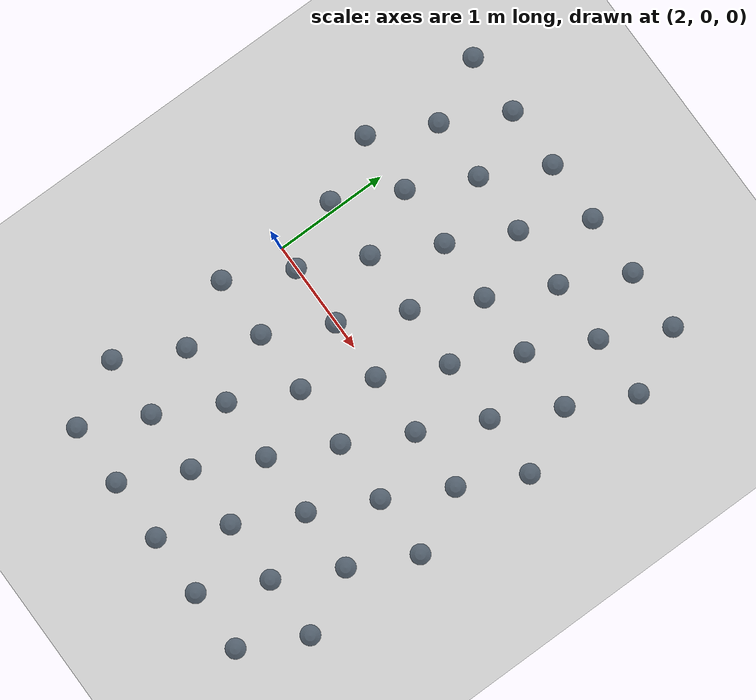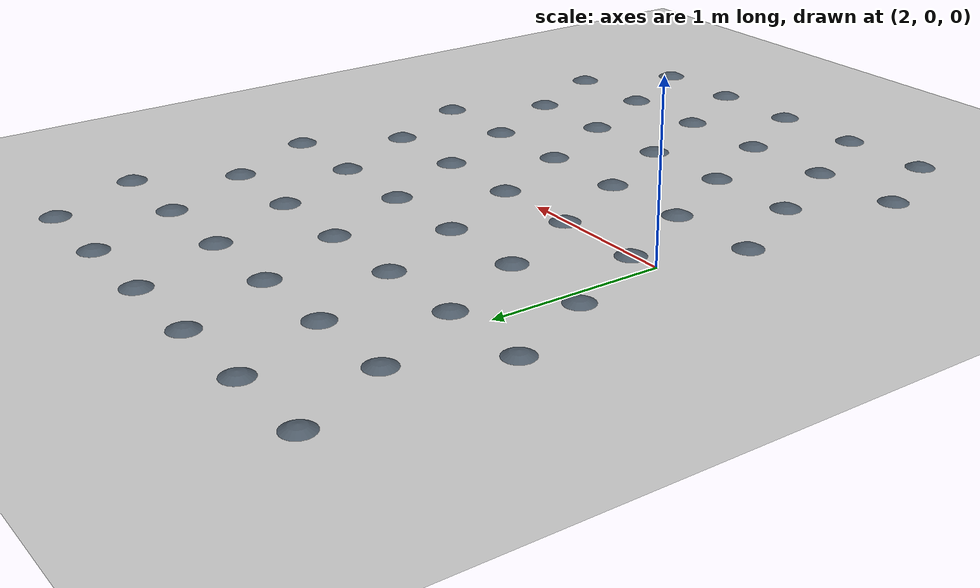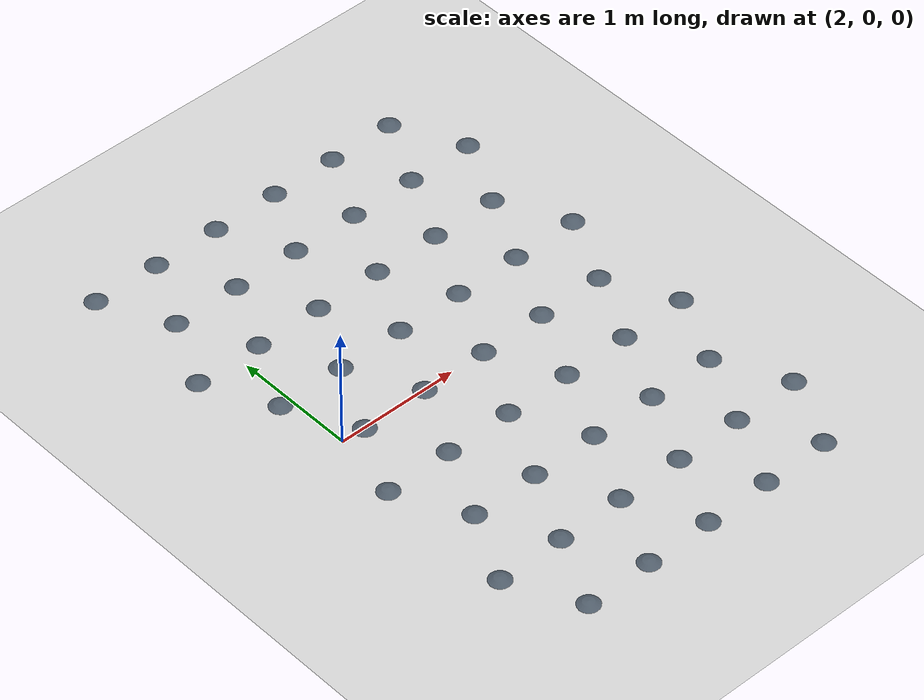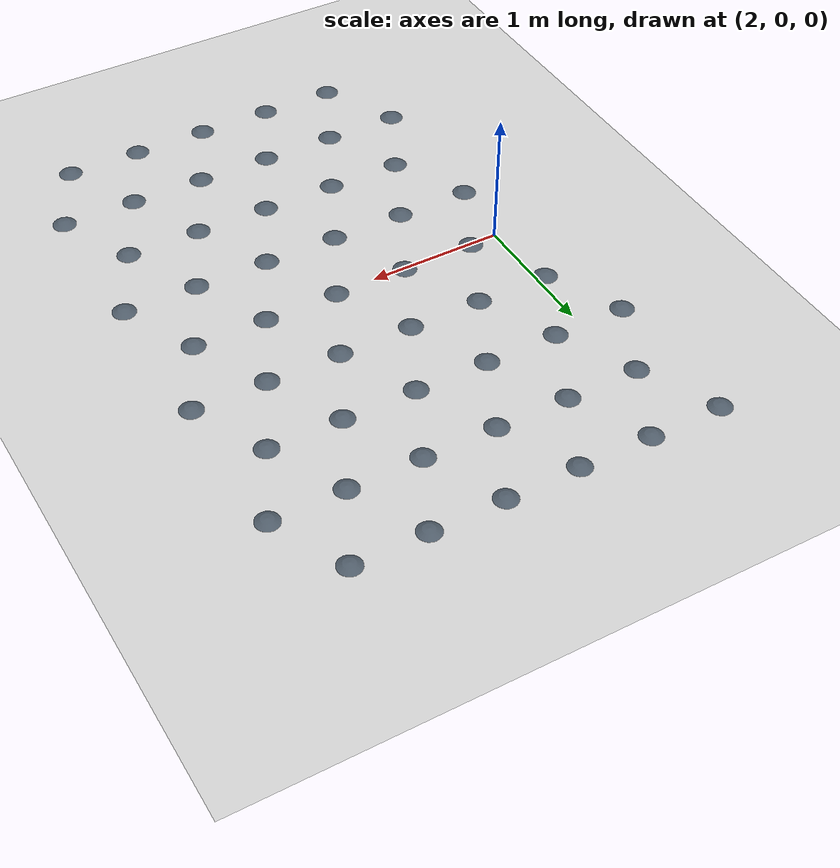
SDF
<sdf version="1.9">
 <world name="empty_ground">
  <model name="ground_plane">
   <static>true</static>
   <link name="link">
    <collision name="collision">
     <geometry><plane><normal>0 0 1</normal><size>100 100</size></plane></geometry>
     <surface>
      <friction>
       <ode><mu>1.5</mu><mu2>1.5</mu2></ode>
       <torsional><coefficient>0.0</coefficient></torsional>
      </friction>
     </surface>
    </collision>
    <visual name="visual">
     <geometry><plane><normal>0 0 1</normal><size>100 100</size></plane></geometry>
     <material><ambient>0.8 0.8 0.8 1</ambient><diffuse>0.8 0.8 0.8 1</diffuse></material>
    </visual>
   </link>
  </model>
  <model name="dome_49">
   <static>true</static>
   <pose>1.920 -1.650 -0.1213 0 0 0</pose>
   <link name="link">
    <collision name="collision">
     <geometry><sphere><radius>0.1453</radius></sphere></geometry>
     <surface>
      <friction>
       <ode><mu>1.5</mu><mu2>1.5</mu2></ode>
       <torsional><coefficient>0.0</coefficient></torsional>
      </friction>
     </surface>
    </collision>
    <visual name="visual">
     <geometry><sphere><radius>0.1453</radius></sphere></geometry>
     <material><ambient>0.25 0.3 0.35 1</ambient><diffuse>0.30 0.35 0.4 1</diffuse></material>
    </visual>
   </link>
  </model>
  <model name="dome_51">
   <static>true</static>
   <pose>1.920 -0.550 -0.1213 0 0 0</pose>
   <link name="link">
    <collision name="collision">
     <geometry><sphere><radius>0.1453</radius></sphere></geometry>
     <surface>
      <friction>
       <ode><mu>1.5</mu><mu2>1.5</mu2></ode>
       <torsional><coefficient>0.0</coefficient></torsional>
      </friction>
     </surface>
    </collision>
    <visual name="visual">
     <geometry><sphere><radius>0.1453</radius></sphere></geometry>
     <material><ambient>0.25 0.3 0.35 1</ambient><diffuse>0.30 0.35 0.4 1</diffuse></material>
    </visual>
   </link>
  </model>
  <model name="dome_53">
   <static>true</static>
   <pose>1.920 0.550 -0.1213 0 0 0</pose>
   <link name="link">
    <collision name="collision">
     <geometry><sphere><radius>0.1453</radius></sphere></geometry>
     <surface>
      <friction>
       <ode><mu>1.5</mu><mu2>1.5</mu2></ode>
       <torsional><coefficient>0.0</coefficient></torsional>
      </friction>
     </surface>
    </collision>
    <visual name="visual">
     <geometry><sphere><radius>0.1453</radius></sphere></geometry>
     <material><ambient>0.25 0.3 0.35 1</ambient><diffuse>0.30 0.35 0.4 1</diffuse></material>
    </visual>
   </link>
  </model>
  <model name="dome_54">
   <static>true</static>
   <pose>1.650 1.100 -0.1213 0 0 0</pose>
   <link name="link">
    <collision name="collision">
     <geometry><sphere><radius>0.1453</radius></sphere></geometry>
     <surface>
      <friction>
       <ode><mu>1.5</mu><mu2>1.5</mu2></ode>
       <torsional><coefficient>0.0</coefficient></torsional>
      </friction>
     </surface>
    </collision>
    <visual name="visual">
     <geometry><sphere><radius>0.1453</radius></sphere></geometry>
     <material><ambient>0.25 0.3 0.35 1</ambient><diffuse>0.30 0.35 0.4 1</diffuse></material>
    </visual>
   </link>
  </model>
  <model name="dome_55">
   <static>true</static>
   <pose>1.920 1.650 -0.1213 0 0 0</pose>
   <link name="link">
    <collision name="collision">
     <geometry><sphere><radius>0.1453</radius></sphere></geometry>
     <surface>
      <friction>
       <ode><mu>1.5</mu><mu2>1.5</mu2></ode>
       <torsional><coefficient>0.0</coefficient></torsional>
      </friction>
     </surface>
    </collision>
    <visual name="visual">
     <geometry><sphere><radius>0.1453</radius></sphere></geometry>
     <material><ambient>0.25 0.3 0.35 1</ambient><diffuse>0.30 0.35 0.4 1</diffuse></material>
    </visual>
   </link>
  </model>
  <model name="dome_56">
   <static>true</static>
   <pose>1.650 2.200 -0.1213 0 0 0</pose>
   <link name="link">
    <collision name="collision">
     <geometry><sphere><radius>0.1453</radius></sphere></geometry>
     <surface>
      <friction>
       <ode><mu>1.5</mu><mu2>1.5</mu2></ode>
       <torsional><coefficient>0.0</coefficient></torsional>
      </friction>
     </surface>
    </collision>
    <visual name="visual">
     <geometry><sphere><radius>0.1453</radius></sphere></geometry>
     <material><ambient>0.25 0.3 0.35 1</ambient><diffuse>0.30 0.35 0.4 1</diffuse></material>
    </visual>
   </link>
  </model>
  <model name="dome_57">
   <static>true</static>
   <pose>2.200 -2.200 -0.1213 0 0 0</pose>
   <link name="link">
    <collision name="collision">
     <geometry><sphere><radius>0.1453</radius></sphere></geometry>
     <surface>
      <friction>
       <ode><mu>1.5</mu><mu2>1.5</mu2></ode>
       <torsional><coefficient>0.0</coefficient></torsional>
      </friction>
     </surface>
    </collision>
    <visual name="visual">
     <geometry><sphere><radius>0.1453</radius></sphere></geometry>
     <material><ambient>0.25 0.3 0.35 1</ambient><diffuse>0.30 0.35 0.4 1</diffuse></material>
    </visual>
   </link>
  </model>
  <model name="dome_58">
   <static>true</static>
   <pose>2.470 -1.650 -0.1213 0 0 0</pose>
   <link name="link">
    <collision name="collision">
     <geometry><sphere><radius>0.1453</radius></sphere></geometry>
     <surface>
      <friction>
       <ode><mu>1.5</mu><mu2>1.5</mu2></ode>
       <torsional><coefficient>0.0</coefficient></torsional>
      </friction>
     </surface>
    </collision>
    <visual name="visual">
     <geometry><sphere><radius>0.1453</radius></sphere></geometry>
     <material><ambient>0.25 0.3 0.35 1</ambient><diffuse>0.30 0.35 0.4 1</diffuse></material>
    </visual>
   </link>
  </model>
  <model name="dome_59">
   <static>true</static>
   <pose>2.200 -1.100 -0.1213 0 0 0</pose>
   <link name="link">
    <collision name="collision">
     <geometry><sphere><radius>0.1453</radius></sphere></geometry>
     <surface>
      <friction>
       <ode><mu>1.5</mu><mu2>1.5</mu2></ode>
       <torsional><coefficient>0.0</coefficient></torsional>
      </friction>
     </surface>
    </collision>
    <visual name="visual">
     <geometry><sphere><radius>0.1453</radius></sphere></geometry>
     <material><ambient>0.25 0.3 0.35 1</ambient><diffuse>0.30 0.35 0.4 1</diffuse></material>
    </visual>
   </link>
  </model>
  <model name="dome_60">
   <static>true</static>
   <pose>2.470 -0.550 -0.1213 0 0 0</pose>
   <link name="link">
    <collision name="collision">
     <geometry><sphere><radius>0.1453</radius></sphere></geometry>
     <surface>
      <friction>
       <ode><mu>1.5</mu><mu2>1.5</mu2></ode>
       <torsional><coefficient>0.0</coefficient></torsional>
      </friction>
     </surface>
    </collision>
    <visual name="visual">
     <geometry><sphere><radius>0.1453</radius></sphere></geometry>
     <material><ambient>0.25 0.3 0.35 1</ambient><diffuse>0.30 0.35 0.4 1</diffuse></material>
    </visual>
   </link>
  </model>
  <model name="dome_61">
   <static>true</static>
   <pose>2.200 0.000 -0.1213 0 0 0</pose>
   <link name="link">
    <collision name="collision">
     <geometry><sphere><radius>0.1453</radius></sphere></geometry>
     <surface>
      <friction>
       <ode><mu>1.5</mu><mu2>1.5</mu2></ode>
       <torsional><coefficient>0.0</coefficient></torsional>
      </friction>
     </surface>
    </collision>
    <visual name="visual">
     <geometry><sphere><radius>0.1453</radius></sphere></geometry>
     <material><ambient>0.25 0.3 0.35 1</ambient><diffuse>0.30 0.35 0.4 1</diffuse></material>
    </visual>
   </link>
  </model>
  <model name="dome_62">
   <static>true</static>
   <pose>2.470 0.550 -0.1213 0 0 0</pose>
   <link name="link">
    <collision name="collision">
     <geometry><sphere><radius>0.1453</radius></sphere></geometry>
     <surface>
      <friction>
       <ode><mu>1.5</mu><mu2>1.5</mu2></ode>
       <torsional><coefficient>0.0</coefficient></torsional>
      </friction>
     </surface>
    </collision>
    <visual name="visual">
     <geometry><sphere><radius>0.1453</radius></sphere></geometry>
     <material><ambient>0.25 0.3 0.35 1</ambient><diffuse>0.30 0.35 0.4 1</diffuse></material>
    </visual>
   </link>
  </model>
  <model name="dome_63">
   <static>true</static>
   <pose>2.200 1.100 -0.1213 0 0 0</pose>
   <link name="link">
    <collision name="collision">
     <geometry><sphere><radius>0.1453</radius></sphere></geometry>
     <surface>
      <friction>
       <ode><mu>1.5</mu><mu2>1.5</mu2></ode>
       <torsional><coefficient>0.0</coefficient></torsional>
      </friction>
     </surface>
    </collision>
    <visual name="visual">
     <geometry><sphere><radius>0.1453</radius></sphere></geometry>
     <material><ambient>0.25 0.3 0.35 1</ambient><diffuse>0.30 0.35 0.4 1</diffuse></material>
    </visual>
   </link>
  </model>
  <model name="dome_64">
   <static>true</static>
   <pose>2.470 1.650 -0.1213 0 0 0</pose>
   <link name="link">
    <collision name="collision">
     <geometry><sphere><radius>0.1453</radius></sphere></geometry>
     <surface>
      <friction>
       <ode><mu>1.5</mu><mu2>1.5</mu2></ode>
       <torsional><coefficient>0.0</coefficient></torsional>
      </friction>
     </surface>
    </collision>
    <visual name="visual">
     <geometry><sphere><radius>0.1453</radius></sphere></geometry>
     <material><ambient>0.25 0.3 0.35 1</ambient><diffuse>0.30 0.35 0.4 1</diffuse></material>
    </visual>
   </link>
  </model>
  <model name="dome_65">
   <static>true</static>
   <pose>2.200 2.200 -0.1213 0 0 0</pose>
   <link name="link">
    <collision name="collision">
     <geometry><sphere><radius>0.1453</radius></sphere></geometry>
     <surface>
      <friction>
       <ode><mu>1.5</mu><mu2>1.5</mu2></ode>
       <torsional><coefficient>0.0</coefficient></torsional>
      </friction>
     </surface>
    </collision>
    <visual name="visual">
     <geometry><sphere><radius>0.1453</radius></sphere></geometry>
     <material><ambient>0.25 0.3 0.35 1</ambient><diffuse>0.30 0.35 0.4 1</diffuse></material>
    </visual>
   </link>
  </model>
  <model name="dome_66">
   <static>true</static>
   <pose>2.750 -2.200 -0.1213 0 0 0</pose>
   <link name="link">
    <collision name="collision">
     <geometry><sphere><radius>0.1453</radius></sphere></geometry>
     <surface>
      <friction>
       <ode><mu>1.5</mu><mu2>1.5</mu2></ode>
       <torsional><coefficient>0.0</coefficient></torsional>
      </friction>
     </surface>
    </collision>
    <visual name="visual">
     <geometry><sphere><radius>0.1453</radius></sphere></geometry>
     <material><ambient>0.25 0.3 0.35 1</ambient><diffuse>0.30 0.35 0.4 1</diffuse></material>
    </visual>
   </link>
  </model>
  <model name="dome_67">
   <static>true</static>
   <pose>3.020 -1.650 -0.1213 0 0 0</pose>
   <link name="link">
    <collision name="collision">
     <geometry><sphere><radius>0.1453</radius></sphere></geometry>
     <surface>
      <friction>
       <ode><mu>1.5</mu><mu2>1.5</mu2></ode>
       <torsional><coefficient>0.0</coefficient></torsional>
      </friction>
     </surface>
    </collision>
    <visual name="visual">
     <geometry><sphere><radius>0.1453</radius></sphere></geometry>
     <material><ambient>0.25 0.3 0.35 1</ambient><diffuse>0.30 0.35 0.4 1</diffuse></material>
    </visual>
   </link>
  </model>
  <model name="dome_68">
   <static>true</static>
   <pose>2.750 -1.100 -0.1213 0 0 0</pose>
   <link name="link">
    <collision name="collision">
     <geometry><sphere><radius>0.1453</radius></sphere></geometry>
     <surface>
      <friction>
       <ode><mu>1.5</mu><mu2>1.5</mu2></ode>
       <torsional><coefficient>0.0</coefficient></torsional>
      </friction>
     </surface>
    </collision>
    <visual name="visual">
     <geometry><sphere><radius>0.1453</radius></sphere></geometry>
     <material><ambient>0.25 0.3 0.35 1</ambient><diffuse>0.30 0.35 0.4 1</diffuse></material>
    </visual>
   </link>
  </model>
  <model name="dome_69">
   <static>true</static>
   <pose>3.020 -0.550 -0.1213 0 0 0</pose>
   <link name="link">
    <collision name="collision">
     <geometry><sphere><radius>0.1453</radius></sphere></geometry>
     <surface>
      <friction>
       <ode><mu>1.5</mu><mu2>1.5</mu2></ode>
       <torsional><coefficient>0.0</coefficient></torsional>
      </friction>
     </surface>
    </collision>
    <visual name="visual">
     <geometry><sphere><radius>0.1453</radius></sphere></geometry>
     <material><ambient>0.25 0.3 0.35 1</ambient><diffuse>0.30 0.35 0.4 1</diffuse></material>
    </visual>
   </link>
  </model>
  <model name="dome_70">
   <static>true</static>
   <pose>2.750 0.000 -0.1213 0 0 0</pose>
   <link name="link">
    <collision name="collision">
     <geometry><sphere><radius>0.1453</radius></sphere></geometry>
     <surface>
      <friction>
       <ode><mu>1.5</mu><mu2>1.5</mu2></ode>
       <torsional><coefficient>0.0</coefficient></torsional>
      </friction>
     </surface>
    </collision>
    <visual name="visual">
     <geometry><sphere><radius>0.1453</radius></sphere></geometry>
     <material><ambient>0.25 0.3 0.35 1</ambient><diffuse>0.30 0.35 0.4 1</diffuse></material>
    </visual>
   </link>
  </model>
  <model name="dome_71">
   <static>true</static>
   <pose>3.020 0.550 -0.1213 0 0 0</pose>
   <link name="link">
    <collision name="collision">
     <geometry><sphere><radius>0.1453</radius></sphere></geometry>
     <surface>
      <friction>
       <ode><mu>1.5</mu><mu2>1.5</mu2></ode>
       <torsional><coefficient>0.0</coefficient></torsional>
      </friction>
     </surface>
    </collision>
    <visual name="visual">
     <geometry><sphere><radius>0.1453</radius></sphere></geometry>
     <material><ambient>0.25 0.3 0.35 1</ambient><diffuse>0.30 0.35 0.4 1</diffuse></material>
    </visual>
   </link>
  </model>
  <model name="dome_72">
   <static>true</static>
   <pose>2.750 1.100 -0.1213 0 0 0</pose>
   <link name="link">
    <collision name="collision">
     <geometry><sphere><radius>0.1453</radius></sphere></geometry>
     <surface>
      <friction>
       <ode><mu>1.5</mu><mu2>1.5</mu2></ode>
       <torsional><coefficient>0.0</coefficient></torsional>
      </friction>
     </surface>
    </collision>
    <visual name="visual">
     <geometry><sphere><radius>0.1453</radius></sphere></geometry>
     <material><ambient>0.25 0.3 0.35 1</ambient><diffuse>0.30 0.35 0.4 1</diffuse></material>
    </visual>
   </link>
  </model>
  <model name="dome_73">
   <static>true</static>
   <pose>3.020 1.650 -0.1213 0 0 0</pose>
   <link name="link">
    <collision name="collision">
     <geometry><sphere><radius>0.1453</radius></sphere></geometry>
     <surface>
      <friction>
       <ode><mu>1.5</mu><mu2>1.5</mu2></ode>
       <torsional><coefficient>0.0</coefficient></torsional>
      </friction>
     </surface>
    </collision>
    <visual name="visual">
     <geometry><sphere><radius>0.1453</radius></sphere></geometry>
     <material><ambient>0.25 0.3 0.35 1</ambient><diffuse>0.30 0.35 0.4 1</diffuse></material>
    </visual>
   </link>
  </model>
  <model name="dome_74">
   <static>true</static>
   <pose>2.750 2.200 -0.1213 0 0 0</pose>
   <link name="link">
    <collision name="collision">
     <geometry><sphere><radius>0.1453</radius></sphere></geometry>
     <surface>
      <friction>
       <ode><mu>1.5</mu><mu2>1.5</mu2></ode>
       <torsional><coefficient>0.0</coefficient></torsional>
      </friction>
     </surface>
    </collision>
    <visual name="visual">
     <geometry><sphere><radius>0.1453</radius></sphere></geometry>
     <material><ambient>0.25 0.3 0.35 1</ambient><diffuse>0.30 0.35 0.4 1</diffuse></material>
    </visual>
   </link>
  </model>
  <model name="dome_75">
   <static>true</static>
   <pose>3.300 -2.200 -0.1213 0 0 0</pose>
   <link name="link">
    <collision name="collision">
     <geometry><sphere><radius>0.1453</radius></sphere></geometry>
     <surface>
      <friction>
       <ode><mu>1.5</mu><mu2>1.5</mu2></ode>
       <torsional><coefficient>0.0</coefficient></torsional>
      </friction>
     </surface>
    </collision>
    <visual name="visual">
     <geometry><sphere><radius>0.1453</radius></sphere></geometry>
     <material><ambient>0.25 0.3 0.35 1</ambient><diffuse>0.30 0.35 0.4 1</diffuse></material>
    </visual>
   </link>
  </model>
  <model name="dome_76">
   <static>true</static>
   <pose>3.570 -1.650 -0.1213 0 0 0</pose>
   <link name="link">
    <collision name="collision">
     <geometry><sphere><radius>0.1453</radius></sphere></geometry>
     <surface>
      <friction>
       <ode><mu>1.5</mu><mu2>1.5</mu2></ode>
       <torsional><coefficient>0.0</coefficient></torsional>
      </friction>
     </surface>
    </collision>
    <visual name="visual">
     <geometry><sphere><radius>0.1453</radius></sphere></geometry>
     <material><ambient>0.25 0.3 0.35 1</ambient><diffuse>0.30 0.35 0.4 1</diffuse></material>
    </visual>
   </link>
  </model>
  <model name="dome_77">
   <static>true</static>
   <pose>3.300 -1.100 -0.1213 0 0 0</pose>
   <link name="link">
    <collision name="collision">
     <geometry><sphere><radius>0.1453</radius></sphere></geometry>
     <surface>
      <friction>
       <ode><mu>1.5</mu><mu2>1.5</mu2></ode>
       <torsional><coefficient>0.0</coefficient></torsional>
      </friction>
     </surface>
    </collision>
    <visual name="visual">
     <geometry><sphere><radius>0.1453</radius></sphere></geometry>
     <material><ambient>0.25 0.3 0.35 1</ambient><diffuse>0.30 0.35 0.4 1</diffuse></material>
    </visual>
   </link>
  </model>
  <model name="dome_78">
   <static>true</static>
   <pose>3.570 -0.550 -0.1213 0 0 0</pose>
   <link name="link">
    <collision name="collision">
     <geometry><sphere><radius>0.1453</radius></sphere></geometry>
     <surface>
      <friction>
       <ode><mu>1.5</mu><mu2>1.5</mu2></ode>
       <torsional><coefficient>0.0</coefficient></torsional>
      </friction>
     </surface>
    </collision>
    <visual name="visual">
     <geometry><sphere><radius>0.1453</radius></sphere></geometry>
     <material><ambient>0.25 0.3 0.35 1</ambient><diffuse>0.30 0.35 0.4 1</diffuse></material>
    </visual>
   </link>
  </model>
  <model name="dome_79">
   <static>true</static>
   <pose>3.300 0.000 -0.1213 0 0 0</pose>
   <link name="link">
    <collision name="collision">
     <geometry><sphere><radius>0.1453</radius></sphere></geometry>
     <surface>
      <friction>
       <ode><mu>1.5</mu><mu2>1.5</mu2></ode>
       <torsional><coefficient>0.0</coefficient></torsional>
      </friction>
     </surface>
    </collision>
    <visual name="visual">
     <geometry><sphere><radius>0.1453</radius></sphere></geometry>
     <material><ambient>0.25 0.3 0.35 1</ambient><diffuse>0.30 0.35 0.4 1</diffuse></material>
    </visual>
   </link>
  </model>
  <model name="dome_80">
   <static>true</static>
   <pose>3.570 0.550 -0.1213 0 0 0</pose>
   <link name="link">
    <collision name="collision">
     <geometry><sphere><radius>0.1453</radius></sphere></geometry>
     <surface>
      <friction>
       <ode><mu>1.5</mu><mu2>1.5</mu2></ode>
       <torsional><coefficient>0.0</coefficient></torsional>
      </friction>
     </surface>
    </collision>
    <visual name="visual">
     <geometry><sphere><radius>0.1453</radius></sphere></geometry>
     <material><ambient>0.25 0.3 0.35 1</ambient><diffuse>0.30 0.35 0.4 1</diffuse></material>
    </visual>
   </link>
  </model>
  <model name="dome_81">
   <static>true</static>
   <pose>3.300 1.100 -0.1213 0 0 0</pose>
   <link name="link">
    <collision name="collision">
     <geometry><sphere><radius>0.1453</radius></sphere></geometry>
     <surface>
      <friction>
       <ode><mu>1.5</mu><mu2>1.5</mu2></ode>
       <torsional><coefficient>0.0</coefficient></torsional>
      </friction>
     </surface>
    </collision>
    <visual name="visual">
     <geometry><sphere><radius>0.1453</radius></sphere></geometry>
     <material><ambient>0.25 0.3 0.35 1</ambient><diffuse>0.30 0.35 0.4 1</diffuse></material>
    </visual>
   </link>
  </model>
  <model name="dome_82">
   <static>true</static>
   <pose>3.570 1.650 -0.1213 0 0 0</pose>
   <link name="link">
    <collision name="collision">
     <geometry><sphere><radius>0.1453</radius></sphere></geometry>
     <surface>
      <friction>
       <ode><mu>1.5</mu><mu2>1.5</mu2></ode>
       <torsional><coefficient>0.0</coefficient></torsional>
      </friction>
     </surface>
    </collision>
    <visual name="visual">
     <geometry><sphere><radius>0.1453</radius></sphere></geometry>
     <material><ambient>0.25 0.3 0.35 1</ambient><diffuse>0.30 0.35 0.4 1</diffuse></material>
    </visual>
   </link>
  </model>
  <model name="dome_83">
   <static>true</static>
   <pose>3.300 2.200 -0.1213 0 0 0</pose>
   <link name="link">
    <collision name="collision">
     <geometry><sphere><radius>0.1453</radius></sphere></geometry>
     <surface>
      <friction>
       <ode><mu>1.5</mu><mu2>1.5</mu2></ode>
       <torsional><coefficient>0.0</coefficient></torsional>
      </friction>
     </surface>
    </collision>
    <visual name="visual">
     <geometry><sphere><radius>0.1453</radius></sphere></geometry>
     <material><ambient>0.25 0.3 0.35 1</ambient><diffuse>0.30 0.35 0.4 1</diffuse></material>
    </visual>
   </link>
  </model>
  <model name="dome_84">
   <static>true</static>
   <pose>3.850 -2.200 -0.1213 0 0 0</pose>
   <link name="link">
    <collision name="collision">
     <geometry><sphere><radius>0.1453</radius></sphere></geometry>
     <surface>
      <friction>
       <ode><mu>1.5</mu><mu2>1.5</mu2></ode>
       <torsional><coefficient>0.0</coefficient></torsional>
      </friction>
     </surface>
    </collision>
    <visual name="visual">
     <geometry><sphere><radius>0.1453</radius></sphere></geometry>
     <material><ambient>0.25 0.3 0.35 1</ambient><diffuse>0.30 0.35 0.4 1</diffuse></material>
    </visual>
   </link>
  </model>
  <model name="dome_85">
   <static>true</static>
   <pose>4.120 -1.650 -0.1213 0 0 0</pose>
   <link name="link">
    <collision name="collision">
     <geometry><sphere><radius>0.1453</radius></sphere></geometry>
     <surface>
      <friction>
       <ode><mu>1.5</mu><mu2>1.5</mu2></ode>
       <torsional><coefficient>0.0</coefficient></torsional>
      </friction>
     </surface>
    </collision>
    <visual name="visual">
     <geometry><sphere><radius>0.1453</radius></sphere></geometry>
     <material><ambient>0.25 0.3 0.35 1</ambient><diffuse>0.30 0.35 0.4 1</diffuse></material>
    </visual>
   </link>
  </model>
  <model name="dome_86">
   <static>true</static>
   <pose>3.850 -1.100 -0.1213 0 0 0</pose>
   <link name="link">
    <collision name="collision">
     <geometry><sphere><radius>0.1453</radius></sphere></geometry>
     <surface>
      <friction>
       <ode><mu>1.5</mu><mu2>1.5</mu2></ode>
       <torsional><coefficient>0.0</coefficient></torsional>
      </friction>
     </surface>
    </collision>
    <visual name="visual">
     <geometry><sphere><radius>0.1453</radius></sphere></geometry>
     <material><ambient>0.25 0.3 0.35 1</ambient><diffuse>0.30 0.35 0.4 1</diffuse></material>
    </visual>
   </link>
  </model>
  <model name="dome_87">
   <static>true</static>
   <pose>4.120 -0.550 -0.1213 0 0 0</pose>
   <link name="link">
    <collision name="collision">
     <geometry><sphere><radius>0.1453</radius></sphere></geometry>
     <surface>
      <friction>
       <ode><mu>1.5</mu><mu2>1.5</mu2></ode>
       <torsional><coefficient>0.0</coefficient></torsional>
      </friction>
     </surface>
    </collision>
    <visual name="visual">
     <geometry><sphere><radius>0.1453</radius></sphere></geometry>
     <material><ambient>0.25 0.3 0.35 1</ambient><diffuse>0.30 0.35 0.4 1</diffuse></material>
    </visual>
   </link>
  </model>
  <model name="dome_88">
   <static>true</static>
   <pose>3.850 0.000 -0.1213 0 0 0</pose>
   <link name="link">
    <collision name="collision">
     <geometry><sphere><radius>0.1453</radius></sphere></geometry>
     <surface>
      <friction>
       <ode><mu>1.5</mu><mu2>1.5</mu2></ode>
       <torsional><coefficient>0.0</coefficient></torsional>
      </friction>
     </surface>
    </collision>
    <visual name="visual">
     <geometry><sphere><radius>0.1453</radius></sphere></geometry>
     <material><ambient>0.25 0.3 0.35 1</ambient><diffuse>0.30 0.35 0.4 1</diffuse></material>
    </visual>
   </link>
  </model>
  <model name="dome_89">
   <static>true</static>
   <pose>4.120 0.550 -0.1213 0 0 0</pose>
   <link name="link">
    <collision name="collision">
     <geometry><sphere><radius>0.1453</radius></sphere></geometry>
     <surface>
      <friction>
       <ode><mu>1.5</mu><mu2>1.5</mu2></ode>
       <torsional><coefficient>0.0</coefficient></torsional>
      </friction>
     </surface>
    </collision>
    <visual name="visual">
     <geometry><sphere><radius>0.1453</radius></sphere></geometry>
     <material><ambient>0.25 0.3 0.35 1</ambient><diffuse>0.30 0.35 0.4 1</diffuse></material>
    </visual>
   </link>
  </model>
  <model name="dome_90">
   <static>true</static>
   <pose>3.850 1.100 -0.1213 0 0 0</pose>
   <link name="link">
    <collision name="collision">
     <geometry><sphere><radius>0.1453</radius></sphere></geometry>
     <surface>
      <friction>
       <ode><mu>1.5</mu><mu2>1.5</mu2></ode>
       <torsional><coefficient>0.0</coefficient></torsional>
      </friction>
     </surface>
    </collision>
    <visual name="visual">
     <geometry><sphere><radius>0.1453</radius></sphere></geometry>
     <material><ambient>0.25 0.3 0.35 1</ambient><diffuse>0.30 0.35 0.4 1</diffuse></material>
    </visual>
   </link>
  </model>
  <model name="dome_91">
   <static>true</static>
   <pose>4.120 1.650 -0.1213 0 0 0</pose>
   <link name="link">
    <collision name="collision">
     <geometry><sphere><radius>0.1453</radius></sphere></geometry>
     <surface>
      <friction>
       <ode><mu>1.5</mu><mu2>1.5</mu2></ode>
       <torsional><coefficient>0.0</coefficient></torsional>
      </friction>
     </surface>
    </collision>
    <visual name="visual">
     <geometry><sphere><radius>0.1453</radius></sphere></geometry>
     <material><ambient>0.25 0.3 0.35 1</ambient><diffuse>0.30 0.35 0.4 1</diffuse></material>
    </visual>
   </link>
  </model>
  <model name="dome_92">
   <static>true</static>
   <pose>3.850 2.200 -0.1213 0 0 0</pose>
   <link name="link">
    <collision name="collision">
     <geometry><sphere><radius>0.1453</radius></sphere></geometry>
     <surface>
      <friction>
       <ode><mu>1.5</mu><mu2>1.5</mu2></ode>
       <torsional><coefficient>0.0</coefficient></torsional>
      </friction>
     </surface>
    </collision>
    <visual name="visual">
     <geometry><sphere><radius>0.1453</radius></sphere></geometry>
     <material><ambient>0.25 0.3 0.35 1</ambient><diffuse>0.30 0.35 0.4 1</diffuse></material>
    </visual>
   </link>
  </model>
  <model name="dome_93">
   <static>true</static>
   <pose>4.400 -2.200 -0.1213 0 0 0</pose>
   <link name="link">
    <collision name="collision">
     <geometry><sphere><radius>0.1453</radius></sphere></geometry>
     <surface>
      <friction>
       <ode><mu>1.5</mu><mu2>1.5</mu2></ode>
       <torsional><coefficient>0.0</coefficient></torsional>
      </friction>
     </surface>
    </collision>
    <visual name="visual">
     <geometry><sphere><radius>0.1453</radius></sphere></geometry>
     <material><ambient>0.25 0.3 0.35 1</ambient><diffuse>0.30 0.35 0.4 1</diffuse></material>
    </visual>
   </link>
  </model>
  <model name="dome_94">
   <static>true</static>
   <pose>4.670 -1.650 -0.1213 0 0 0</pose>
   <link name="link">
    <collision name="collision">
     <geometry><sphere><radius>0.1453</radius></sphere></geometry>
     <surface>
      <friction>
       <ode><mu>1.5</mu><mu2>1.5</mu2></ode>
       <torsional><coefficient>0.0</coefficient></torsional>
      </friction>
     </surface>
    </collision>
    <visual name="visual">
     <geometry><sphere><radius>0.1453</radius></sphere></geometry>
     <material><ambient>0.25 0.3 0.35 1</ambient><diffuse>0.30 0.35 0.4 1</diffuse></material>
    </visual>
   </link>
  </model>
  <model name="dome_95">
   <static>true</static>
   <pose>4.400 -1.100 -0.1213 0 0 0</pose>
   <link name="link">
    <collision name="collision">
     <geometry><sphere><radius>0.1453</radius></sphere></geometry>
     <surface>
      <friction>
       <ode><mu>1.5</mu><mu2>1.5</mu2></ode>
       <torsional><coefficient>0.0</coefficient></torsional>
      </friction>
     </surface>
    </collision>
    <visual name="visual">
     <geometry><sphere><radius>0.1453</radius></sphere></geometry>
     <material><ambient>0.25 0.3 0.35 1</ambient><diffuse>0.30 0.35 0.4 1</diffuse></material>
    </visual>
   </link>
  </model>
  <model name="dome_96">
   <static>true</static>
   <pose>4.670 -0.550 -0.1213 0 0 0</pose>
   <link name="link">
    <collision name="collision">
     <geometry><sphere><radius>0.1453</radius></sphere></geometry>
     <surface>
      <friction>
       <ode><mu>1.5</mu><mu2>1.5</mu2></ode>
       <torsional><coefficient>0.0</coefficient></torsional>
      </friction>
     </surface>
    </collision>
    <visual name="visual">
     <geometry><sphere><radius>0.1453</radius></sphere></geometry>
     <material><ambient>0.25 0.3 0.35 1</ambient><diffuse>0.30 0.35 0.4 1</diffuse></material>
    </visual>
   </link>
  </model>
  <model name="dome_97">
   <static>true</static>
   <pose>4.400 0.000 -0.1213 0 0 0</pose>
   <link name="link">
    <collision name="collision">
     <geometry><sphere><radius>0.1453</radius></sphere></geometry>
     <surface>
      <friction>
       <ode><mu>1.5</mu><mu2>1.5</mu2></ode>
       <torsional><coefficient>0.0</coefficient></torsional>
      </friction>
     </surface>
    </collision>
    <visual name="visual">
     <geometry><sphere><radius>0.1453</radius></sphere></geometry>
     <material><ambient>0.25 0.3 0.35 1</ambient><diffuse>0.30 0.35 0.4 1</diffuse></material>
    </visual>
   </link>
  </model>
  <model name="dome_98">
   <static>true</static>
   <pose>4.670 0.550 -0.1213 0 0 0</pose>
   <link name="link">
    <collision name="collision">
     <geometry><sphere><radius>0.1453</radius></sphere></geometry>
     <surface>
      <friction>
       <ode><mu>1.5</mu><mu2>1.5</mu2></ode>
       <torsional><coefficient>0.0</coefficient></torsional>
      </friction>
     </surface>
    </collision>
    <visual name="visual">
     <geometry><sphere><radius>0.1453</radius></sphere></geometry>
     <material><ambient>0.25 0.3 0.35 1</ambient><diffuse>0.30 0.35 0.4 1</diffuse></material>
    </visual>
   </link>
  </model>
  <model name="dome_99">
   <static>true</static>
   <pose>4.400 1.100 -0.1213 0 0 0</pose>
   <link name="link">
    <collision name="collision">
     <geometry><sphere><radius>0.1453</radius></sphere></geometry>
     <surface>
      <friction>
       <ode><mu>1.5</mu><mu2>1.5</mu2></ode>
       <torsional><coefficient>0.0</coefficient></torsional>
      </friction>
     </surface>
    </collision>
    <visual name="visual">
     <geometry><sphere><radius>0.1453</radius></sphere></geometry>
     <material><ambient>0.25 0.3 0.35 1</ambient><diffuse>0.30 0.35 0.4 1</diffuse></material>
    </visual>
   </link>
  </model>
  <model name="dome_100">
   <static>true</static>
   <pose>4.670 1.650 -0.1213 0 0 0</pose>
   <link name="link">
    <collision name="collision">
     <geometry><sphere><radius>0.1453</radius></sphere></geometry>
     <surface>
      <friction>
       <ode><mu>1.5</mu><mu2>1.5</mu2></ode>
       <torsional><coefficient>0.0</coefficient></torsional>
      </friction>
     </surface>
    </collision>
    <visual name="visual">
     <geometry><sphere><radius>0.1453</radius></sphere></geometry>
     <material><ambient>0.25 0.3 0.35 1</ambient><diffuse>0.30 0.35 0.4 1</diffuse></material>
    </visual>
   </link>
  </model>
  <model name="dome_101">
   <static>true</static>
   <pose>4.400 2.200 -0.1213 0 0 0</pose>
   <link name="link">
    <collision name="collision">
     <geometry><sphere><radius>0.1453</radius></sphere></geometry>
     <surface>
      <friction>
       <ode><mu>1.5</mu><mu2>1.5</mu2></ode>
       <torsional><coefficient>0.0</coefficient></torsional>
      </friction>
     </surface>
    </collision>
    <visual name="visual">
     <geometry><sphere><radius>0.1453</radius></sphere></geometry>
     <material><ambient>0.25 0.3 0.35 1</ambient><diffuse>0.30 0.35 0.4 1</diffuse></material>
    </visual>
   </link>
  </model>
 </world>
</sdf>
